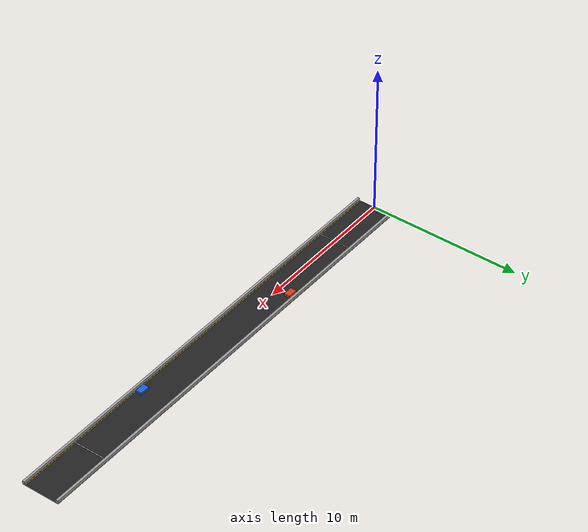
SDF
<?xml version="1.0"?>
<sdf version="1.10">
  <world name="straight_avoidance">
    <physics name="default_physics" type="ode">
      <max_step_size>0.001</max_step_size>
      <real_time_factor>1.0</real_time_factor>
    </physics>

    <plugin filename="gz-sim-physics-system" name="gz::sim::systems::Physics"/>
    <plugin filename="gz-sim-user-commands-system" name="gz::sim::systems::UserCommands"/>
    <plugin filename="gz-sim-scene-broadcaster-system" name="gz::sim::systems::SceneBroadcaster"/>
    <plugin filename="gz-sim-sensors-system" name="gz::sim::systems::Sensors">
      <render_engine>ogre2</render_engine>
    </plugin>

    <gravity>0 0 -9.81</gravity>

    <scene>
      <ambient>0.65 0.65 0.65 1</ambient>
      <background>0.78 0.85 0.92 1</background>
      <shadows>true</shadows>
    </scene>

    <light type="directional" name="sun">
      <cast_shadows>true</cast_shadows>
      <pose>7.5 0 10 0 0 0</pose>
      <diffuse>0.9 0.9 0.9 1</diffuse>
      <specular>0.2 0.2 0.2 1</specular>
      <direction>-0.4 0.1 -0.9</direction>
    </light>

    <!-- Road: x=0..30 m, width=2.50 m. -->
    <model name="road">
      <static>true</static>
      <pose>15.0 0 -0.025 0 0 0</pose>

      <link name="road_link">
        <collision name="road_collision">
          <geometry>
            <box>
              <size>30.0 2.50 0.05</size>
            </box>
          </geometry>
        </collision>

        <visual name="road_visual">
          <geometry>
            <box>
              <size>30.0 2.50 0.05</size>
            </box>
          </geometry>

          <material>
            <ambient>0.12 0.12 0.12 1</ambient>
            <diffuse>0.14 0.14 0.14 1</diffuse>
          </material>
        </visual>
      </link>
    </model>

    <!-- Yellow edge lines -->
    <model name="yellow_lines">
      <static>true</static>

      <link name="lines">
        <visual name="left_yellow">
          <pose>15.0 1.0475 0.006 0 0 0</pose>

          <geometry>
            <box>
              <size>30.0 0.035 0.008</size>
            </box>
          </geometry>

          <material>
            <ambient>1 0.72 0 1</ambient>
            <diffuse>1 0.72 0 1</diffuse>
          </material>
        </visual>

        <visual name="right_yellow">
          <pose>15.0 -1.0475 0.006 0 0 0</pose>

          <geometry>
            <box>
              <size>30.0 0.035 0.008</size>
            </box>
          </geometry>

          <material>
            <ambient>1 0.72 0 1</ambient>
            <diffuse>1 0.72 0 1</diffuse>
          </material>
        </visual>
      </link>
    </model>

    <model name="white_edge_lines">
      <static>true</static>

      <link name="lines">
        <visual name="left_white">
          <pose>15.0 0.9875 0.007 0 0 0</pose>

          <geometry>
            <box>
              <size>30.0 0.025 0.009</size>
            </box>
          </geometry>

          <material>
            <ambient>1 1 1 1</ambient>
            <diffuse>1 1 1 1</diffuse>
          </material>
        </visual>

        <visual name="right_white">
          <pose>15.0 -0.9875 0.007 0 0 0</pose>

          <geometry>
            <box>
              <size>30.0 0.025 0.009</size>
            </box>
          </geometry>

          <material>
            <ambient>1 1 1 1</ambient>
            <diffuse>1 1 1 1</diffuse>
          </material>
        </visual>
      </link>
    </model>

    <!--
      Road start       = x 0.0
      Start line       = x 4.0
      Finish line      = x 26.0
      Road end         = x 30.0

      Start to finish  = 22.0 m
    -->
    <model name="start_finish">
      <static>true</static>

      <link name="lines">
        <visual name="start">
          <pose>4.00 0 0.009 0 0 0</pose>

          <geometry>
            <box>
              <size>0.05 1.95 0.012</size>
            </box>
          </geometry>

          <material>
            <ambient>1 1 1 1</ambient>
            <diffuse>1 1 1 1</diffuse>
          </material>
        </visual>

        <visual name="finish">
          <pose>26.00 0 0.009 0 0 0</pose>

          <geometry>
            <box>
              <size>0.05 1.95 0.012</size>
            </box>
          </geometry>

          <material>
            <ambient>1 1 1 1</ambient>
            <diffuse>1 1 1 1</diffuse>
          </material>
        </visual>
      </link>
    </model>

    <!--
      Curbs:
      height = 0.18 m
      centre Z = 0.09 m

      LiDAR centre height = 0.12 m,
      therefore the 2D LiDAR scan plane intersects the curb collision.
    -->

    <model name="left_curb">
      <static>true</static>
      <pose>15.0 1.170 0.09 0 0 0</pose>

      <link name="curb">
        <collision name="collision">
          <geometry>
            <box>
              <size>30.0 0.15 0.18</size>
            </box>
          </geometry>
        </collision>

        <visual name="visual">
          <geometry>
            <box>
              <size>30.0 0.15 0.18</size>
            </box>
          </geometry>

          <material>
            <ambient>0.58 0.58 0.58 1</ambient>
            <diffuse>0.62 0.62 0.62 1</diffuse>
          </material>
        </visual>
      </link>
    </model>

    <model name="right_curb">
      <static>true</static>
      <pose>15.0 -1.170 0.09 0 0 0</pose>

      <link name="curb">
        <collision name="collision">
          <geometry>
            <box>
              <size>30.0 0.15 0.18</size>
            </box>
          </geometry>
        </collision>

        <visual name="visual">
          <geometry>
            <box>
              <size>30.0 0.15 0.18</size>
            </box>
          </geometry>

          <material>
            <ambient>0.58 0.58 0.58 1</ambient>
            <diffuse>0.62 0.62 0.62 1</diffuse>
          </material>
        </visual>
      </link>
    </model>

    <!--
      Obstacle positions and LEFT / RIGHT order are filled by the
      launch file before Gazebo starts.
    -->

    <model name="obstacle_1">
      <static>true</static>
      <pose>9.325000 0.780 0.075 0 0 0</pose>

      <link name="box_link">
        <collision name="collision">
          <geometry>
            <box>
              <size>0.65 0.39 0.15</size>
            </box>
          </geometry>
        </collision>

        <visual name="visual">
          <geometry>
            <box>
              <size>0.65 0.39 0.15</size>
            </box>
          </geometry>

          <material>
            <ambient>0.72 0.18 0.08 1</ambient>
            <diffuse>0.82 0.22 0.10 1</diffuse>
          </material>
        </visual>
      </link>
    </model>

    <model name="obstacle_2">
      <static>true</static>
      <pose>20.675000 -0.780 0.075 0 0 0</pose>

      <link name="box_link">
        <collision name="collision">
          <geometry>
            <box>
              <size>0.65 0.39 0.15</size>
            </box>
          </geometry>
        </collision>

        <visual name="visual">
          <geometry>
            <box>
              <size>0.65 0.39 0.15</size>
            </box>
          </geometry>

          <material>
            <ambient>0.08 0.30 0.72 1</ambient>
            <diffuse>0.10 0.38 0.88 1</diffuse>
          </material>
        </visual>
      </link>
    </model>

  </world>
</sdf>
